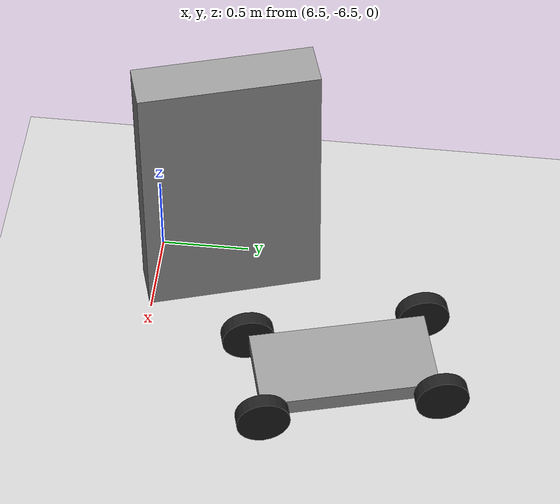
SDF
<sdf version="1.7">
 <world name="curve5">
  <model name="ground_plane">
   <static>1</static>
   <link name="link">
    <collision name="collision">
     <geometry><plane><normal>0 0 1</normal><size>100 100</size></plane></geometry>
     <surface><friction><ode><mu>100</mu><mu2>50</mu2></ode></friction></surface>
    </collision>
    <visual name="visual">
     <cast_shadows>0</cast_shadows>
     <geometry><plane><normal>0 0 1</normal><size>100 100</size></plane></geometry>
     <material>
      <script><uri>file://media/materials/scripts/gazebo.material</uri><name>Gazebo/Grey</name></script>
     </material>
    </visual>
   </link>
  </model>
  <model name="unit_box0">
   <link name="link">
    <inertial>
     <mass>1</mass>
     <inertia>
      <ixx>0.166667</ixx>
      <ixy>0</ixy>
      <ixz>0</ixz>
      <iyy>0.166667</iyy>
      <iyz>0</iyz>
      <izz>0.166667</izz>
     </inertia>
    </inertial>
    <visual name="visual">
     <geometry><box><size>1 0.255546 1.62843</size></box></geometry>
     <material>
      <script><name>Gazebo/Grey</name><uri>file://media/materials/scripts/gazebo.material</uri></script>
      <shader type="pixel"/>
     </material>
    </visual>
    <collision name="collision">
     <geometry><box><size>1 0.255546 1.62843</size></box></geometry>
     <surface>
      <friction>
       <ode><mu>1</mu><mu2>1</mu2><fdir1>0 0 0</fdir1><slip1>0</slip1><slip2>0</slip2></ode>
       <torsional>
        <coefficient>1</coefficient>
        <patch_radius>0</patch_radius>
        <surface_radius>0</surface_radius>
        <use_patch_radius>1</use_patch_radius>
        <ode><slip>0</slip></ode>
       </torsional>
      </friction>
      <bounce><restitution_coefficient>0</restitution_coefficient><threshold>1e+06</threshold></bounce>
      <contact>
       <collide_without_contact>0</collide_without_contact>
       <collide_without_contact_bitmask>1</collide_without_contact_bitmask>
       <collide_bitmask>1</collide_bitmask>
       <ode>
        <soft_cfm>0</soft_cfm>
        <soft_erp>0.2</soft_erp>
        <kp>1e+13</kp>
        <kd>1</kd>
        <max_vel>0.01</max_vel>
        <min_depth>0</min_depth>
       </ode>
       <bullet>
        <split_impulse>1</split_impulse>
        <split_impulse_penetration_threshold>-0.01</split_impulse_penetration_threshold>
        <soft_cfm>0</soft_cfm>
        <soft_erp>0.2</soft_erp>
        <kp>1e+13</kp>
        <kd>1</kd>
       </bullet>
      </contact>
     </surface>
    </collision>
   </link>
   <static>0</static>
   <pose>6.70989 -6.06825 0.814215 -1e-06 -0 -1.27579</pose>
  </model>
  <model name="cart_rigid_suspension_clone">
   <link name="chassis">
    <pose>-0 0 0.15 0 -0 0</pose>
    <inertial>
     <pose>0.1 0 0 0 -0 0</pose>
     <mass>10</mass>
     <inertia>
      <ixx>0.216667</ixx>
      <iyy>0.841667</iyy>
      <izz>1.04167</izz>
      <ixy>0</ixy>
      <ixz>0</ixz>
      <iyz>0</iyz>
     </inertia>
    </inertial>
    <visual name="visual">
     <geometry><box><size>1 0.5 0.1</size></box></geometry>
     <material>
      <script><uri>file://media/materials/scripts/gazebo.material</uri><name>Gazebo/Grey</name></script>
      <shader type="pixel"/>
     </material>
    </visual>
    <collision name="collision">
     <geometry><box><size>1 0.5 0.1</size></box></geometry>
     <surface>
      <friction>
       <ode><mu>1</mu><mu2>1</mu2><fdir1>0 0 0</fdir1><slip1>0</slip1><slip2>0</slip2></ode>
       <torsional>
        <coefficient>1</coefficient>
        <patch_radius>0</patch_radius>
        <surface_radius>0</surface_radius>
        <use_patch_radius>1</use_patch_radius>
        <ode><slip>0</slip></ode>
       </torsional>
      </friction>
      <bounce><restitution_coefficient>0</restitution_coefficient><threshold>1e+06</threshold></bounce>
      <contact>
       <collide_without_contact>0</collide_without_contact>
       <collide_without_contact_bitmask>1</collide_without_contact_bitmask>
       <collide_bitmask>1</collide_bitmask>
       <ode>
        <soft_cfm>0</soft_cfm>
        <soft_erp>0.2</soft_erp>
        <kp>1e+13</kp>
        <kd>1</kd>
        <max_vel>0.01</max_vel>
        <min_depth>0</min_depth>
       </ode>
       <bullet>
        <split_impulse>1</split_impulse>
        <split_impulse_penetration_threshold>-0.01</split_impulse_penetration_threshold>
        <soft_cfm>0</soft_cfm>
        <soft_erp>0.2</soft_erp>
        <kp>1e+13</kp>
        <kd>1</kd>
       </bullet>
      </contact>
     </surface>
    </collision>
   </link>
   <link name="wheel_front_left">
    <pose>0.5 0.298 0.15 -1.5708 0 0</pose>
    <inertial>
     <mass>0.5</mass>
     <inertia>
      <ixx>0.00307917</ixx>
      <iyy>0.00307917</iyy>
      <izz>0.005625</izz>
      <ixy>0</ixy>
      <ixz>0</ixz>
      <iyz>0</iyz>
     </inertia>
    </inertial>
    <visual name="visual">
     <geometry><cylinder><radius>0.15</radius><length>0.08</length></cylinder></geometry>
     <material>
      <script><uri>file://media/materials/scripts/gazebo.material</uri><name>Gazebo/Black</name></script>
      <shader type="pixel"/>
     </material>
    </visual>
    <collision name="collision">
     <geometry><cylinder><radius>0.15</radius><length>0.08</length></cylinder></geometry>
     <surface>
      <friction>
       <ode><mu>1</mu><mu2>1</mu2><fdir1>0 0 0</fdir1><slip1>0</slip1><slip2>0</slip2></ode>
       <torsional>
        <coefficient>1</coefficient>
        <patch_radius>0</patch_radius>
        <surface_radius>0</surface_radius>
        <use_patch_radius>1</use_patch_radius>
        <ode><slip>0</slip></ode>
       </torsional>
      </friction>
      <bounce><restitution_coefficient>0</restitution_coefficient><threshold>1e+06</threshold></bounce>
      <contact>
       <collide_without_contact>0</collide_without_contact>
       <collide_without_contact_bitmask>1</collide_without_contact_bitmask>
       <collide_bitmask>1</collide_bitmask>
       <ode>
        <soft_cfm>0</soft_cfm>
        <soft_erp>0.2</soft_erp>
        <kp>1e+13</kp>
        <kd>1</kd>
        <max_vel>0.01</max_vel>
        <min_depth>0</min_depth>
       </ode>
       <bullet>
        <split_impulse>1</split_impulse>
        <split_impulse_penetration_threshold>-0.01</split_impulse_penetration_threshold>
        <soft_cfm>0</soft_cfm>
        <soft_erp>0.2</soft_erp>
        <kp>1e+13</kp>
        <kd>1</kd>
       </bullet>
      </contact>
     </surface>
    </collision>
   </link>
   <link name="wheel_front_right">
    <pose>0.5 -0.298 0.15 -1.5708 0 0</pose>
    <inertial>
     <mass>0.5</mass>
     <inertia>
      <ixx>0.00307917</ixx>
      <iyy>0.00307917</iyy>
      <izz>0.005625</izz>
      <ixy>0</ixy>
      <ixz>0</ixz>
      <iyz>0</iyz>
     </inertia>
    </inertial>
    <visual name="visual">
     <geometry><cylinder><radius>0.15</radius><length>0.08</length></cylinder></geometry>
     <material>
      <script><uri>file://media/materials/scripts/gazebo.material</uri><name>Gazebo/Black</name></script>
      <shader type="pixel"/>
     </material>
    </visual>
    <collision name="collision">
     <geometry><cylinder><radius>0.15</radius><length>0.08</length></cylinder></geometry>
     <surface>
      <friction>
       <ode><mu>1</mu><mu2>1</mu2><fdir1>0 0 0</fdir1><slip1>0</slip1><slip2>0</slip2></ode>
       <torsional>
        <coefficient>1</coefficient>
        <patch_radius>0</patch_radius>
        <surface_radius>0</surface_radius>
        <use_patch_radius>1</use_patch_radius>
        <ode><slip>0</slip></ode>
       </torsional>
      </friction>
      <bounce><restitution_coefficient>0</restitution_coefficient><threshold>1e+06</threshold></bounce>
      <contact>
       <collide_without_contact>0</collide_without_contact>
       <collide_without_contact_bitmask>1</collide_without_contact_bitmask>
       <collide_bitmask>1</collide_bitmask>
       <ode>
        <soft_cfm>0</soft_cfm>
        <soft_erp>0.2</soft_erp>
        <kp>1e+13</kp>
        <kd>1</kd>
        <max_vel>0.01</max_vel>
        <min_depth>0</min_depth>
       </ode>
       <bullet>
        <split_impulse>1</split_impulse>
        <split_impulse_penetration_threshold>-0.01</split_impulse_penetration_threshold>
        <soft_cfm>0</soft_cfm>
        <soft_erp>0.2</soft_erp>
        <kp>1e+13</kp>
        <kd>1</kd>
       </bullet>
      </contact>
     </surface>
    </collision>
   </link>
   <link name="wheel_rear_left">
    <pose>-0.5 0.298 0.15 -1.5708 0 0</pose>
    <inertial>
     <mass>0.5</mass>
     <inertia>
      <ixx>0.00307917</ixx>
      <iyy>0.00307917</iyy>
      <izz>0.005625</izz>
      <ixy>0</ixy>
      <ixz>0</ixz>
      <iyz>0</iyz>
     </inertia>
    </inertial>
    <visual name="visual">
     <geometry><cylinder><radius>0.15</radius><length>0.08</length></cylinder></geometry>
     <material>
      <script><uri>file://media/materials/scripts/gazebo.material</uri><name>Gazebo/Black</name></script>
      <shader type="pixel"/>
     </material>
    </visual>
    <collision name="collision">
     <geometry><cylinder><radius>0.15</radius><length>0.08</length></cylinder></geometry>
     <surface>
      <friction>
       <ode><mu>1</mu><mu2>1</mu2><fdir1>0 0 0</fdir1><slip1>0</slip1><slip2>0</slip2></ode>
       <torsional>
        <coefficient>1</coefficient>
        <patch_radius>0</patch_radius>
        <surface_radius>0</surface_radius>
        <use_patch_radius>1</use_patch_radius>
        <ode><slip>0</slip></ode>
       </torsional>
      </friction>
      <bounce><restitution_coefficient>0</restitution_coefficient><threshold>1e+06</threshold></bounce>
      <contact>
       <collide_without_contact>0</collide_without_contact>
       <collide_without_contact_bitmask>1</collide_without_contact_bitmask>
       <collide_bitmask>1</collide_bitmask>
       <ode>
        <soft_cfm>0</soft_cfm>
        <soft_erp>0.2</soft_erp>
        <kp>1e+13</kp>
        <kd>1</kd>
        <max_vel>0.01</max_vel>
        <min_depth>0</min_depth>
       </ode>
       <bullet>
        <split_impulse>1</split_impulse>
        <split_impulse_penetration_threshold>-0.01</split_impulse_penetration_threshold>
        <soft_cfm>0</soft_cfm>
        <soft_erp>0.2</soft_erp>
        <kp>1e+13</kp>
        <kd>1</kd>
       </bullet>
      </contact>
     </surface>
    </collision>
   </link>
   <link name="wheel_rear_right">
    <pose>-0.5 -0.298 0.15 -1.5708 0 0</pose>
    <inertial>
     <mass>0.5</mass>
     <inertia>
      <ixx>0.00307917</ixx>
      <iyy>0.00307917</iyy>
      <izz>0.005625</izz>
      <ixy>0</ixy>
      <ixz>0</ixz>
      <iyz>0</iyz>
     </inertia>
    </inertial>
    <visual name="visual">
     <geometry><cylinder><radius>0.15</radius><length>0.08</length></cylinder></geometry>
     <material>
      <script><uri>file://media/materials/scripts/gazebo.material</uri><name>Gazebo/Black</name></script>
      <shader type="pixel"/>
     </material>
    </visual>
    <collision name="collision">
     <geometry><cylinder><radius>0.15</radius><length>0.08</length></cylinder></geometry>
     <surface>
      <friction>
       <ode><mu>1</mu><mu2>1</mu2><fdir1>0 0 0</fdir1><slip1>0</slip1><slip2>0</slip2></ode>
       <torsional>
        <coefficient>1</coefficient>
        <patch_radius>0</patch_radius>
        <surface_radius>0</surface_radius>
        <use_patch_radius>1</use_patch_radius>
        <ode><slip>0</slip></ode>
       </torsional>
      </friction>
      <bounce><restitution_coefficient>0</restitution_coefficient><threshold>1e+06</threshold></bounce>
      <contact>
       <collide_without_contact>0</collide_without_contact>
       <collide_without_contact_bitmask>1</collide_without_contact_bitmask>
       <collide_bitmask>1</collide_bitmask>
       <ode>
        <soft_cfm>0</soft_cfm>
        <soft_erp>0.2</soft_erp>
        <kp>1e+13</kp>
        <kd>1</kd>
        <max_vel>0.01</max_vel>
        <min_depth>0</min_depth>
       </ode>
       <bullet>
        <split_impulse>1</split_impulse>
        <split_impulse_penetration_threshold>-0.01</split_impulse_penetration_threshold>
        <soft_cfm>0</soft_cfm>
        <soft_erp>0.2</soft_erp>
        <kp>1e+13</kp>
        <kd>1</kd>
       </bullet>
      </contact>
     </surface>
    </collision>
   </link>
   <joint name="wheel_front_left_spin" type="revolute">
    <parent>chassis</parent>
    <child>wheel_front_left</child>
    <axis>
     <xyz>0 0 1</xyz>
     <limit><lower>-1e+16</lower><upper>1e+16</upper><effort>-1</effort><velocity>-1</velocity></limit>
     <dynamics>
      <spring_reference>0</spring_reference>
      <spring_stiffness>0</spring_stiffness>
      <damping>0</damping>
      <friction>0</friction>
     </dynamics>
    </axis>
    <physics>
     <ode><limit><cfm>0</cfm><erp>0.2</erp></limit><suspension><cfm>0</cfm><erp>0.2</erp></suspension></ode>
    </physics>
   </joint>
   <joint name="wheel_front_right_spin" type="revolute">
    <parent>chassis</parent>
    <child>wheel_front_right</child>
    <axis>
     <xyz>0 0 1</xyz>
     <limit><lower>-1e+16</lower><upper>1e+16</upper><effort>-1</effort><velocity>-1</velocity></limit>
     <dynamics>
      <spring_reference>0</spring_reference>
      <spring_stiffness>0</spring_stiffness>
      <damping>0</damping>
      <friction>0</friction>
     </dynamics>
    </axis>
    <physics>
     <ode><limit><cfm>0</cfm><erp>0.2</erp></limit><suspension><cfm>0</cfm><erp>0.2</erp></suspension></ode>
    </physics>
   </joint>
   <joint name="wheel_rear_left_spin" type="revolute">
    <parent>chassis</parent>
    <child>wheel_rear_left</child>
    <axis>
     <xyz>0 0 1</xyz>
     <limit><lower>-1e+16</lower><upper>1e+16</upper><effort>-1</effort><velocity>-1</velocity></limit>
     <dynamics>
      <spring_reference>0</spring_reference>
      <spring_stiffness>0</spring_stiffness>
      <damping>0</damping>
      <friction>0</friction>
     </dynamics>
    </axis>
    <physics>
     <ode><limit><cfm>0</cfm><erp>0.2</erp></limit><suspension><cfm>0</cfm><erp>0.2</erp></suspension></ode>
    </physics>
   </joint>
   <joint name="wheel_rear_right_spin" type="revolute">
    <parent>chassis</parent>
    <child>wheel_rear_right</child>
    <axis>
     <xyz>0 0 1</xyz>
     <limit><lower>-1e+16</lower><upper>1e+16</upper><effort>-1</effort><velocity>-1</velocity></limit>
     <dynamics>
      <spring_reference>0</spring_reference>
      <spring_stiffness>0</spring_stiffness>
      <damping>0</damping>
      <friction>0</friction>
     </dynamics>
    </axis>
    <physics>
     <ode><limit><cfm>0</cfm><erp>0.2</erp></limit><suspension><cfm>0</cfm><erp>0.2</erp></suspension></ode>
    </physics>
   </joint>
   <static>0</static>
   <pose>7.43733 -5.33909 0 0 -0 -1.30844</pose>
  </model>
 </world>
</sdf>
